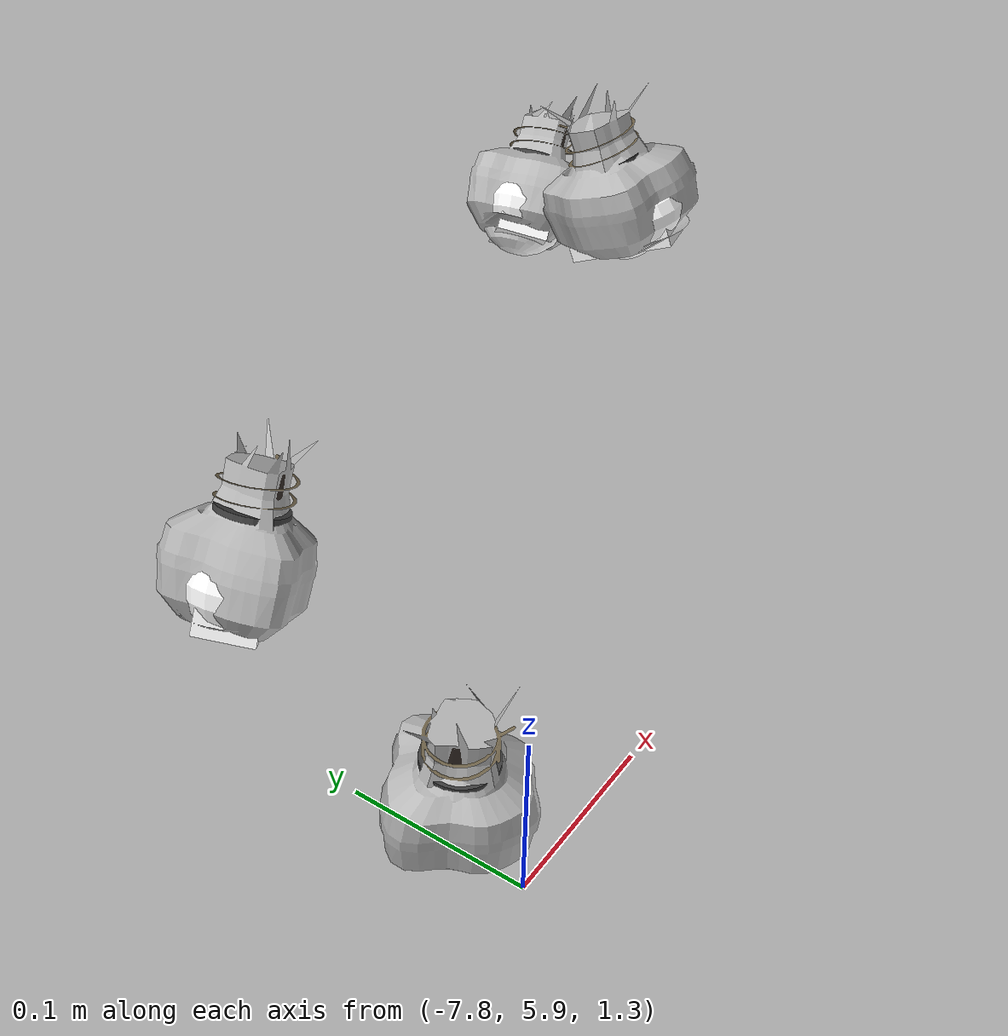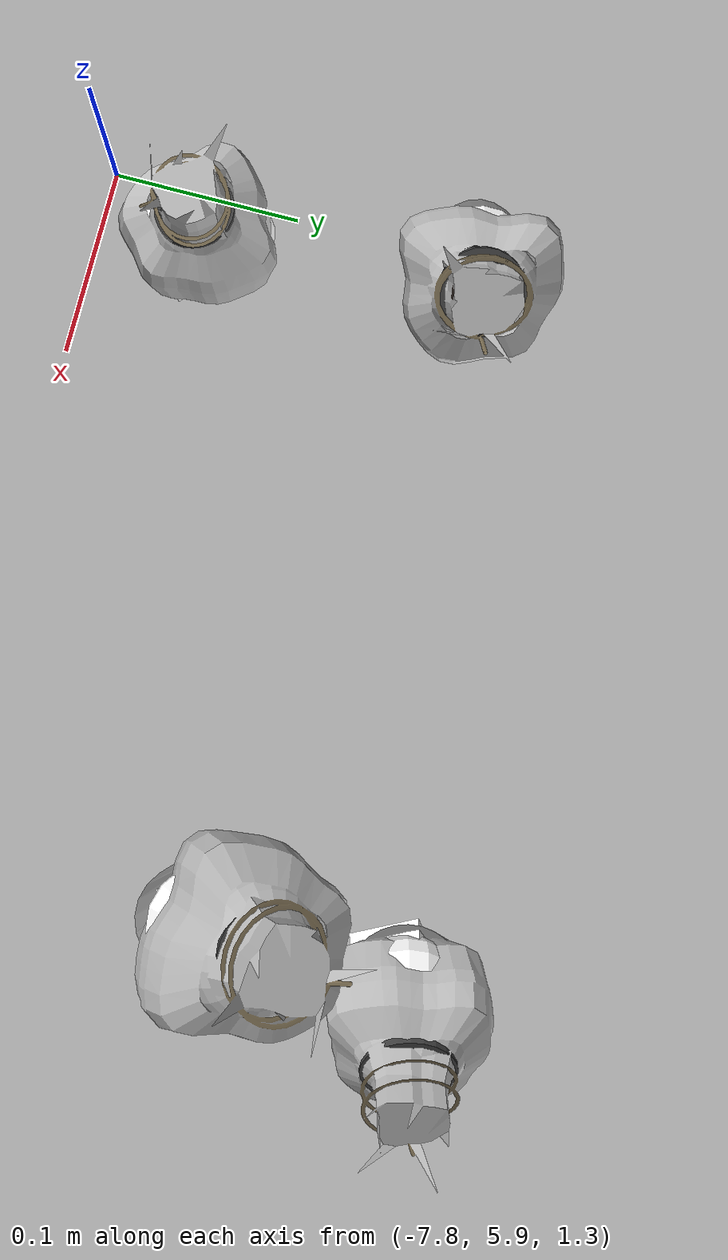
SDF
<sdf version="1.11">
 <world name="peach_orchard">
  <model name="ground">
   <static>true</static>
   <link name="link">
    <visual name="soil">
     <geometry><plane><normal>0 0 1</normal><size>32 22</size></plane></geometry>
     <material>
      <ambient>1 1 1 1</ambient>
      <diffuse>1 1 1 1</diffuse>
      <specular>0.1 0.1 0.1 1</specular>
      <pbr>
       <metal>
        <albedo_map>textures/soil_albedo.png</albedo_map>
        <normal_map type="tangent">textures/soil_normal.png</normal_map>
        <roughness>0.95</roughness>
        <metalness>0</metalness>
       </metal>
      </pbr>
     </material>
    </visual>
    <collision name="c_soil">
     <geometry><plane><normal>0 0 1</normal><size>32 22</size></plane></geometry>
    </collision>
   </link>
  </model>
  <model name="peach_tree_r0_t6_00">
   <pose>-7.45 6.14028 1.38813 0 0.786018 0.244177</pose>
   <static>true</static>
   <link name="bag">
    <visual name="bag_mesh">
     <pose>0 0 0.0391407 0 0 0</pose>
     <geometry>
      <mesh><uri>model://peach_sim/meshes/bagged_peach.glb</uri><scale>0.959254 1.03983 0.889562</scale></mesh>
     </geometry>
    </visual>
    <visual name="body">
     <pose>0 0 0.0211407 0 0 0</pose>
     <geometry><ellipsoid><radii>0.035972 0.0270355 0.022832</radii></ellipsoid></geometry>
     <material>
      <ambient>1 1 1 1</ambient>
      <diffuse>1 1 1 1</diffuse>
      <specular>0.1 0.1 0.1 1</specular>
      <pbr>
       <metal>
        <albedo_map>textures/paper_bag_albedo.png</albedo_map>
        <normal_map type="tangent">textures/paper_bag_normal.png</normal_map>
        <roughness>0.72</roughness>
        <metalness>0</metalness>
       </metal>
      </pbr>
     </material>
    </visual>
    <visual name="bottom_fold">
     <pose>0 0 0.012 0 0 0.35</pose>
     <geometry><box><size>0.0557567 0.0310909 0.022</size></box></geometry>
     <material>
      <ambient>1 1 1 1</ambient>
      <diffuse>1 1 1 1</diffuse>
      <specular>0.1 0.1 0.1 1</specular>
      <pbr>
       <metal>
        <albedo_map>textures/paper_bag_albedo.png</albedo_map>
        <normal_map type="tangent">textures/paper_bag_normal.png</normal_map>
        <roughness>0.8</roughness>
        <metalness>0</metalness>
       </metal>
      </pbr>
     </material>
    </visual>
    <visual name="fruit">
     <pose>0 0 0.0216306 0 0 0</pose>
     <geometry><sphere><radius>0.0287358</radius></sphere></geometry>
     <material>
      <ambient>1 1 1 1</ambient>
      <diffuse>1 1 1 1</diffuse>
      <specular>0.1 0.1 0.1 1</specular>
      <pbr>
       <metal>
        <albedo_map>textures/fruit_skin_albedo.png</albedo_map>
        <normal_map type="tangent">textures/fruit_skin_normal.png</normal_map>
        <roughness>0.55</roughness>
        <metalness>0</metalness>
       </metal>
      </pbr>
     </material>
    </visual>
    <visual name="neck">
     <pose>0 0 0.0512815 0 0 0</pose>
     <geometry><cylinder><radius>0.013</radius><length>0.018</length></cylinder></geometry>
     <material>
      <ambient>1 1 1 1</ambient>
      <diffuse>1 1 1 1</diffuse>
      <specular>0.1 0.1 0.1 1</specular>
      <pbr>
       <metal>
        <albedo_map>textures/paper_bag_albedo.png</albedo_map>
        <normal_map type="tangent">textures/paper_bag_normal.png</normal_map>
        <roughness>0.75</roughness>
        <metalness>0</metalness>
       </metal>
      </pbr>
     </material>
    </visual>
    <visual name="gather">
     <pose>0 0 0.0322815 0 0 0</pose>
     <geometry><cylinder><radius>0.019</radius><length>0.02</length></cylinder></geometry>
     <material>
      <ambient>1 1 1 1</ambient>
      <diffuse>1 1 1 1</diffuse>
      <specular>0.1 0.1 0.1 1</specular>
      <pbr>
       <metal>
        <albedo_map>textures/paper_bag_albedo.png</albedo_map>
        <normal_map type="tangent">textures/paper_bag_normal.png</normal_map>
        <roughness>0.8</roughness>
        <metalness>0</metalness>
       </metal>
      </pbr>
     </material>
    </visual>
    <visual name="inner_paper">
     <pose>0 0 0.0562815 0 0 0</pose>
     <geometry><cylinder><radius>0.01</radius><length>0.008</length></cylinder></geometry>
     <material>
      <ambient>0.180392 0.14902 0.133333 1</ambient>
      <diffuse>0.180392 0.14902 0.133333 1</diffuse>
      <specular>0.1 0.1 0.1 1</specular>
     </material>
    </visual>
    <visual name="wire_0">
     <pose>0 0 0.0462815 0 0 0</pose>
     <geometry><cylinder><radius>0.0205</radius><length>0.0035</length></cylinder></geometry>
     <material>
      <ambient>0.25 0.25 0.25 1</ambient>
      <diffuse>0.25 0.25 0.25 1</diffuse>
      <specular>0.1 0.1 0.1 1</specular>
     </material>
    </visual>
    <visual name="wire_1">
     <pose>0 0 0.0532815 0 0 0</pose>
     <geometry><cylinder><radius>0.0205</radius><length>0.0035</length></cylinder></geometry>
     <material>
      <ambient>0.25 0.25 0.25 1</ambient>
      <diffuse>0.25 0.25 0.25 1</diffuse>
      <specular>0.1 0.1 0.1 1</specular>
     </material>
    </visual>
    <visual name="wire_tail">
     <pose>0.01 0 0.0542815 0 0.521618 0</pose>
     <geometry><cylinder><radius>0.0012</radius><length>0.026</length></cylinder></geometry>
     <material>
      <ambient>0.25 0.25 0.25 1</ambient>
      <diffuse>0.25 0.25 0.25 1</diffuse>
      <specular>0.1 0.1 0.1 1</specular>
     </material>
    </visual>
    <collision name="c_body">
     <pose>0 0 0.0211407 0 0 0</pose>
     <geometry><cylinder><radius>0.035972</radius><length>0.0422815</length></cylinder></geometry>
    </collision>
   </link>
  </model>
  <model name="peach_tree_r0_t6_01">
   <pose>-7.45 6.059 1.41739 0 0.408232 1.48208</pose>
   <static>true</static>
   <link name="bag">
    <visual name="bag_mesh">
     <pose>0 0 0.0390577 0 0 0</pose>
     <geometry>
      <mesh><uri>model://peach_sim/meshes/bagged_peach.glb</uri><scale>1.06826 1.20556 0.887674</scale></mesh>
     </geometry>
    </visual>
    <visual name="body">
     <pose>0 0 0.0210577 0 0 0</pose>
     <geometry><ellipsoid><radii>0.0400599 0.0313445 0.0227423</radii></ellipsoid></geometry>
     <material>
      <ambient>1 1 1 1</ambient>
      <diffuse>1 1 1 1</diffuse>
      <specular>0.1 0.1 0.1 1</specular>
      <pbr>
       <metal>
        <albedo_map>textures/paper_bag_albedo.png</albedo_map>
        <normal_map type="tangent">textures/paper_bag_normal.png</normal_map>
        <roughness>0.72</roughness>
        <metalness>0</metalness>
       </metal>
      </pbr>
     </material>
    </visual>
    <visual name="bottom_fold">
     <pose>0 0 0.012 0 0 0.35</pose>
     <geometry><box><size>0.0620928 0.0360462 0.022</size></box></geometry>
     <material>
      <ambient>1 1 1 1</ambient>
      <diffuse>1 1 1 1</diffuse>
      <specular>0.1 0.1 0.1 1</specular>
      <pbr>
       <metal>
        <albedo_map>textures/paper_bag_albedo.png</albedo_map>
        <normal_map type="tangent">textures/paper_bag_normal.png</normal_map>
        <roughness>0.8</roughness>
        <metalness>0</metalness>
       </metal>
      </pbr>
     </material>
    </visual>
    <visual name="fruit">
     <pose>0 0 0.0201824 0 0 0</pose>
     <geometry><sphere><radius>0.0272297</radius></sphere></geometry>
     <material>
      <ambient>1 1 1 1</ambient>
      <diffuse>1 1 1 1</diffuse>
      <specular>0.1 0.1 0.1 1</specular>
      <pbr>
       <metal>
        <albedo_map>textures/fruit_skin_albedo.png</albedo_map>
        <normal_map type="tangent">textures/fruit_skin_normal.png</normal_map>
        <roughness>0.55</roughness>
        <metalness>0</metalness>
       </metal>
      </pbr>
     </material>
    </visual>
    <visual name="neck">
     <pose>0 0 0.0511153 0 0 0</pose>
     <geometry><cylinder><radius>0.013</radius><length>0.018</length></cylinder></geometry>
     <material>
      <ambient>1 1 1 1</ambient>
      <diffuse>1 1 1 1</diffuse>
      <specular>0.1 0.1 0.1 1</specular>
      <pbr>
       <metal>
        <albedo_map>textures/paper_bag_albedo.png</albedo_map>
        <normal_map type="tangent">textures/paper_bag_normal.png</normal_map>
        <roughness>0.75</roughness>
        <metalness>0</metalness>
       </metal>
      </pbr>
     </material>
    </visual>
    <visual name="gather">
     <pose>0 0 0.0321153 0 0 0</pose>
     <geometry><cylinder><radius>0.019</radius><length>0.02</length></cylinder></geometry>
     <material>
      <ambient>1 1 1 1</ambient>
      <diffuse>1 1 1 1</diffuse>
      <specular>0.1 0.1 0.1 1</specular>
      <pbr>
       <metal>
        <albedo_map>textures/paper_bag_albedo.png</albedo_map>
        <normal_map type="tangent">textures/paper_bag_normal.png</normal_map>
        <roughness>0.8</roughness>
        <metalness>0</metalness>
       </metal>
      </pbr>
     </material>
    </visual>
    <visual name="inner_paper">
     <pose>0 0 0.0561153 0 0 0</pose>
     <geometry><cylinder><radius>0.01</radius><length>0.008</length></cylinder></geometry>
     <material>
      <ambient>0.180392 0.14902 0.133333 1</ambient>
      <diffuse>0.180392 0.14902 0.133333 1</diffuse>
      <specular>0.1 0.1 0.1 1</specular>
     </material>
    </visual>
    <visual name="wire_0">
     <pose>0 0 0.0461153 0 0 0</pose>
     <geometry><cylinder><radius>0.0205</radius><length>0.0035</length></cylinder></geometry>
     <material>
      <ambient>0.25 0.25 0.25 1</ambient>
      <diffuse>0.25 0.25 0.25 1</diffuse>
      <specular>0.1 0.1 0.1 1</specular>
     </material>
    </visual>
    <visual name="wire_1">
     <pose>0 0 0.0531153 0 0 0</pose>
     <geometry><cylinder><radius>0.0205</radius><length>0.0035</length></cylinder></geometry>
     <material>
      <ambient>0.25 0.25 0.25 1</ambient>
      <diffuse>0.25 0.25 0.25 1</diffuse>
      <specular>0.1 0.1 0.1 1</specular>
     </material>
    </visual>
    <visual name="wire_tail">
     <pose>0.01 0 0.0541153 0 0.521618 0</pose>
     <geometry><cylinder><radius>0.0012</radius><length>0.026</length></cylinder></geometry>
     <material>
      <ambient>0.25 0.25 0.25 1</ambient>
      <diffuse>0.25 0.25 0.25 1</diffuse>
      <specular>0.1 0.1 0.1 1</specular>
     </material>
    </visual>
    <collision name="c_body">
     <pose>0 0 0.0210577 0 0 0</pose>
     <geometry><cylinder><radius>0.0400599</radius><length>0.0421153</length></cylinder></geometry>
    </collision>
   </link>
  </model>
  <model name="peach_tree_r0_t6_04">
   <pose>-7.78 6.09512 1.34445 0 0.481812 0.178847</pose>
   <static>true</static>
   <link name="bag">
    <visual name="bag_mesh">
     <pose>0 0 0.0445078 0 0 0</pose>
     <geometry>
      <mesh><uri>model://peach_sim/meshes/bagged_peach.glb</uri><scale>0.927874 1.1396 1.01154</scale></mesh>
     </geometry>
    </visual>
    <visual name="body">
     <pose>0 0 0.0265078 0 0 0</pose>
     <geometry><ellipsoid><radii>0.0347953 0.0296297 0.0286284</radii></ellipsoid></geometry>
     <material>
      <ambient>1 1 1 1</ambient>
      <diffuse>1 1 1 1</diffuse>
      <specular>0.1 0.1 0.1 1</specular>
      <pbr>
       <metal>
        <albedo_map>textures/paper_bag_albedo.png</albedo_map>
        <normal_map type="tangent">textures/paper_bag_normal.png</normal_map>
        <roughness>0.72</roughness>
        <metalness>0</metalness>
       </metal>
      </pbr>
     </material>
    </visual>
    <visual name="bottom_fold">
     <pose>0 0 0.012 0 0 0.35</pose>
     <geometry><box><size>0.0539327 0.0340741 0.022</size></box></geometry>
     <material>
      <ambient>1 1 1 1</ambient>
      <diffuse>1 1 1 1</diffuse>
      <specular>0.1 0.1 0.1 1</specular>
      <pbr>
       <metal>
        <albedo_map>textures/paper_bag_albedo.png</albedo_map>
        <normal_map type="tangent">textures/paper_bag_normal.png</normal_map>
        <roughness>0.8</roughness>
        <metalness>0</metalness>
       </metal>
      </pbr>
     </material>
    </visual>
    <visual name="fruit">
     <pose>0 0 0.0206929 0 0 0</pose>
     <geometry><sphere><radius>0.0277606</radius></sphere></geometry>
     <material>
      <ambient>1 1 1 1</ambient>
      <diffuse>1 1 1 1</diffuse>
      <specular>0.1 0.1 0.1 1</specular>
      <pbr>
       <metal>
        <albedo_map>textures/fruit_skin_albedo.png</albedo_map>
        <normal_map type="tangent">textures/fruit_skin_normal.png</normal_map>
        <roughness>0.55</roughness>
        <metalness>0</metalness>
       </metal>
      </pbr>
     </material>
    </visual>
    <visual name="neck">
     <pose>0 0 0.0620155 0 0 0</pose>
     <geometry><cylinder><radius>0.013</radius><length>0.018</length></cylinder></geometry>
     <material>
      <ambient>1 1 1 1</ambient>
      <diffuse>1 1 1 1</diffuse>
      <specular>0.1 0.1 0.1 1</specular>
      <pbr>
       <metal>
        <albedo_map>textures/paper_bag_albedo.png</albedo_map>
        <normal_map type="tangent">textures/paper_bag_normal.png</normal_map>
        <roughness>0.75</roughness>
        <metalness>0</metalness>
       </metal>
      </pbr>
     </material>
    </visual>
    <visual name="gather">
     <pose>0 0 0.0430155 0 0 0</pose>
     <geometry><cylinder><radius>0.019</radius><length>0.02</length></cylinder></geometry>
     <material>
      <ambient>1 1 1 1</ambient>
      <diffuse>1 1 1 1</diffuse>
      <specular>0.1 0.1 0.1 1</specular>
      <pbr>
       <metal>
        <albedo_map>textures/paper_bag_albedo.png</albedo_map>
        <normal_map type="tangent">textures/paper_bag_normal.png</normal_map>
        <roughness>0.8</roughness>
        <metalness>0</metalness>
       </metal>
      </pbr>
     </material>
    </visual>
    <visual name="inner_paper">
     <pose>0 0 0.0670155 0 0 0</pose>
     <geometry><cylinder><radius>0.01</radius><length>0.008</length></cylinder></geometry>
     <material>
      <ambient>0.180392 0.14902 0.133333 1</ambient>
      <diffuse>0.180392 0.14902 0.133333 1</diffuse>
      <specular>0.1 0.1 0.1 1</specular>
     </material>
    </visual>
    <visual name="wire_0">
     <pose>0 0 0.0570155 0 0 0</pose>
     <geometry><cylinder><radius>0.0205</radius><length>0.0035</length></cylinder></geometry>
     <material>
      <ambient>0.25 0.25 0.25 1</ambient>
      <diffuse>0.25 0.25 0.25 1</diffuse>
      <specular>0.1 0.1 0.1 1</specular>
     </material>
    </visual>
    <visual name="wire_1">
     <pose>0 0 0.0640155 0 0 0</pose>
     <geometry><cylinder><radius>0.0205</radius><length>0.0035</length></cylinder></geometry>
     <material>
      <ambient>0.25 0.25 0.25 1</ambient>
      <diffuse>0.25 0.25 0.25 1</diffuse>
      <specular>0.1 0.1 0.1 1</specular>
     </material>
    </visual>
    <visual name="wire_tail">
     <pose>0.01 0 0.0650155 0 0.521618 0</pose>
     <geometry><cylinder><radius>0.0012</radius><length>0.026</length></cylinder></geometry>
     <material>
      <ambient>0.25 0.25 0.25 1</ambient>
      <diffuse>0.25 0.25 0.25 1</diffuse>
      <specular>0.1 0.1 0.1 1</specular>
     </material>
    </visual>
    <collision name="c_body">
     <pose>0 0 0.0265078 0 0 0</pose>
     <geometry><cylinder><radius>0.0347953</radius><length>0.0530155</length></cylinder></geometry>
    </collision>
   </link>
  </model>
  <model name="peach_tree_r0_t6_05">
   <pose>-7.78 5.95384 1.27809 0 0.0440035 -1.09076</pose>
   <static>true</static>
   <link name="bag">
    <visual name="bag_mesh">
     <pose>0 0 0.0420896 0 0 -0</pose>
     <geometry>
      <mesh><uri>model://peach_sim/meshes/bagged_peach.glb</uri><scale>0.989202 1.1141 0.956582</scale></mesh>
     </geometry>
    </visual>
    <visual name="body">
     <pose>0 0 0.0240896 0 0 0</pose>
     <geometry><ellipsoid><radii>0.0370951 0.0289667 0.0260168</radii></ellipsoid></geometry>
     <material>
      <ambient>1 1 1 1</ambient>
      <diffuse>1 1 1 1</diffuse>
      <specular>0.1 0.1 0.1 1</specular>
      <pbr>
       <metal>
        <albedo_map>textures/paper_bag_albedo.png</albedo_map>
        <normal_map type="tangent">textures/paper_bag_normal.png</normal_map>
        <roughness>0.72</roughness>
        <metalness>0</metalness>
       </metal>
      </pbr>
     </material>
    </visual>
    <visual name="bottom_fold">
     <pose>0 0 0.012 0 0 0.35</pose>
     <geometry><box><size>0.0574974 0.0333117 0.022</size></box></geometry>
     <material>
      <ambient>1 1 1 1</ambient>
      <diffuse>1 1 1 1</diffuse>
      <specular>0.1 0.1 0.1 1</specular>
      <pbr>
       <metal>
        <albedo_map>textures/paper_bag_albedo.png</albedo_map>
        <normal_map type="tangent">textures/paper_bag_normal.png</normal_map>
        <roughness>0.8</roughness>
        <metalness>0</metalness>
       </metal>
      </pbr>
     </material>
    </visual>
    <visual name="fruit">
     <pose>0 0 0.0181269 0 0 0</pose>
     <geometry><sphere><radius>0.025092</radius></sphere></geometry>
     <material>
      <ambient>1 1 1 1</ambient>
      <diffuse>1 1 1 1</diffuse>
      <specular>0.1 0.1 0.1 1</specular>
      <pbr>
       <metal>
        <albedo_map>textures/fruit_skin_albedo.png</albedo_map>
        <normal_map type="tangent">textures/fruit_skin_normal.png</normal_map>
        <roughness>0.55</roughness>
        <metalness>0</metalness>
       </metal>
      </pbr>
     </material>
    </visual>
    <visual name="neck">
     <pose>0 0 0.0571792 0 0 0</pose>
     <geometry><cylinder><radius>0.013</radius><length>0.018</length></cylinder></geometry>
     <material>
      <ambient>1 1 1 1</ambient>
      <diffuse>1 1 1 1</diffuse>
      <specular>0.1 0.1 0.1 1</specular>
      <pbr>
       <metal>
        <albedo_map>textures/paper_bag_albedo.png</albedo_map>
        <normal_map type="tangent">textures/paper_bag_normal.png</normal_map>
        <roughness>0.75</roughness>
        <metalness>0</metalness>
       </metal>
      </pbr>
     </material>
    </visual>
    <visual name="gather">
     <pose>0 0 0.0381792 0 0 0</pose>
     <geometry><cylinder><radius>0.019</radius><length>0.02</length></cylinder></geometry>
     <material>
      <ambient>1 1 1 1</ambient>
      <diffuse>1 1 1 1</diffuse>
      <specular>0.1 0.1 0.1 1</specular>
      <pbr>
       <metal>
        <albedo_map>textures/paper_bag_albedo.png</albedo_map>
        <normal_map type="tangent">textures/paper_bag_normal.png</normal_map>
        <roughness>0.8</roughness>
        <metalness>0</metalness>
       </metal>
      </pbr>
     </material>
    </visual>
    <visual name="inner_paper">
     <pose>0 0 0.0621792 0 0 0</pose>
     <geometry><cylinder><radius>0.01</radius><length>0.008</length></cylinder></geometry>
     <material>
      <ambient>0.180392 0.14902 0.133333 1</ambient>
      <diffuse>0.180392 0.14902 0.133333 1</diffuse>
      <specular>0.1 0.1 0.1 1</specular>
     </material>
    </visual>
    <visual name="wire_0">
     <pose>0 0 0.0521792 0 0 0</pose>
     <geometry><cylinder><radius>0.0205</radius><length>0.0035</length></cylinder></geometry>
     <material>
      <ambient>0.25 0.25 0.25 1</ambient>
      <diffuse>0.25 0.25 0.25 1</diffuse>
      <specular>0.1 0.1 0.1 1</specular>
     </material>
    </visual>
    <visual name="wire_1">
     <pose>0 0 0.0591792 0 0 0</pose>
     <geometry><cylinder><radius>0.0205</radius><length>0.0035</length></cylinder></geometry>
     <material>
      <ambient>0.25 0.25 0.25 1</ambient>
      <diffuse>0.25 0.25 0.25 1</diffuse>
      <specular>0.1 0.1 0.1 1</specular>
     </material>
    </visual>
    <visual name="wire_tail">
     <pose>0.01 0 0.0601792 0 0.521618 0</pose>
     <geometry><cylinder><radius>0.0012</radius><length>0.026</length></cylinder></geometry>
     <material>
      <ambient>0.25 0.25 0.25 1</ambient>
      <diffuse>0.25 0.25 0.25 1</diffuse>
      <specular>0.1 0.1 0.1 1</specular>
     </material>
    </visual>
    <collision name="c_body">
     <pose>0 0 0.0240896 0 0 0</pose>
     <geometry><cylinder><radius>0.0370951</radius><length>0.0481792</length></cylinder></geometry>
    </collision>
   </link>
  </model>
 </world>
</sdf>
